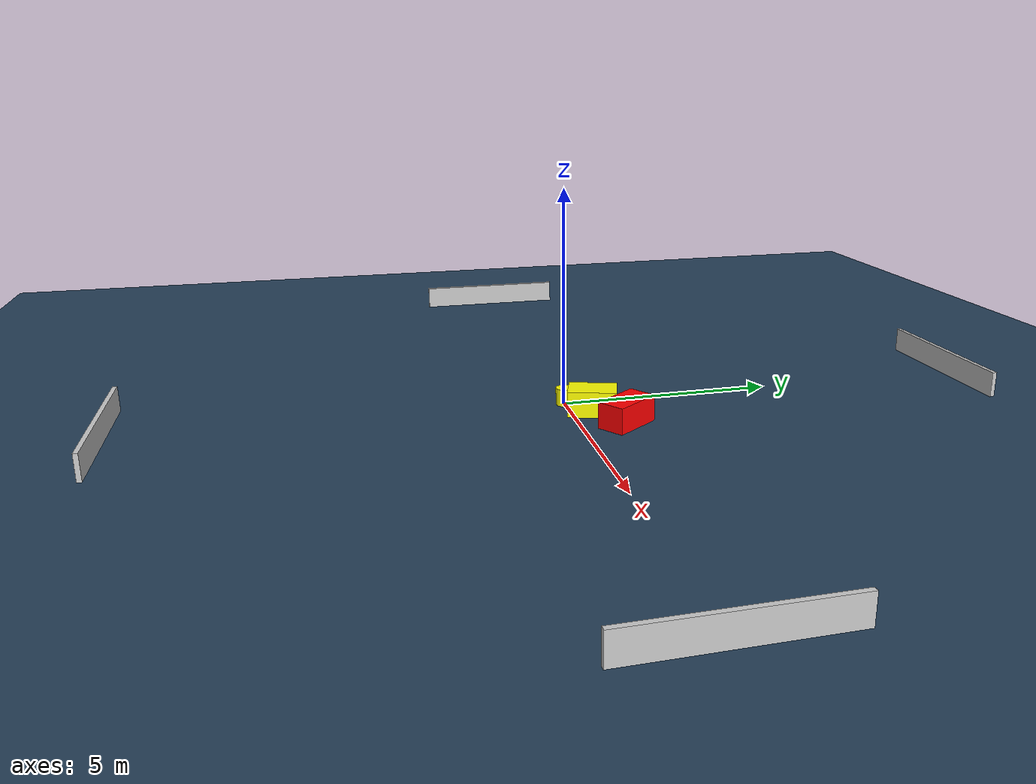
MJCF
<?xml version="1.0" ?>
<mujoco model="generated_environment">
  <option timestep="0.01" integrator="RK4" cone="elliptic"/>
  <default>
    <geom density="1"/>
  </default>
  <asset>
    <texture builtin="gradient" height="3072" name="skybox" rgb1="0.3 0.5 0.7" rgb2="0 0 0" type="skybox" width="512"/>
    <texture builtin="checker" height="300" name="groundplane" rgb1="0.2 0.3 0.4" rgb2="0.1 0.2 0.3" type="2d" width="300"/>
    <material name="groundplane" reflectance="0.2" texrepeat="5 5" texture="groundplane"/>
  </asset>
  <worldbody>
    <light dir="0 0 -1" directional="true" pos="0 0 1.5"/>
    <geom condim="3" friction="0.5 0.005 0.001" material="groundplane" name="floor" pos="0 0 0" size="0 0 0.05" type="plane"/>
    <body name="walls">
      <geom name="wall_1" condim="4" pos="-10.0 0.0 0.3" rgba="0.800000011920929 0.800000011920929 0.800000011920929 1.0" size="0.05 2.0 0.3" type="box"/>
      <geom name="wall_2" condim="4" pos="10.0 0.0 0.3" rgba="0.800000011920929 0.800000011920929 0.800000011920929 1.0" size="0.05 2.0 0.3" type="box"/>
      <geom name="wall_3" condim="4" pos="0.0 -10.0 0.3" rgba="0.800000011920929 0.800000011920929 0.800000011920929 1.0" size="2.0 0.05 0.3" type="box"/>
      <geom name="wall_4" condim="4" pos="0.0 10.0 0.3" rgba="0.800000011920929 0.800000011920929 0.800000011920929 1.0" size="2.0 0.05 0.3" type="box"/>
    </body>
    <body name="robot">
      <joint name="joint_x" type="slide" pos="0 0 0" axis="1 0 0"/>
      <joint name="joint_y" type="slide" pos="0 0 0" axis="0 1 0"/>
      <geom name="robot" type="cylinder" pos="0.0 0.0 0.2" size="0.2 0.2 0.0" mass="5.0" friction="1.0 0.005 0.0001" condim="4" rgba="1.0 1.0 0.0 1.0"/>
    </body>
    <body name="obstacle_1_movable">
      <geom name="obstacle_1_movable" condim="4" pos="0.7200628234485781 0.4763319293605723 0.3" euler="0 0 252.2697518733974" friction="0.0 0.005 0.001" rgba="1.0 1.0 0.0 1.0" size="0.552673224098545 0.3555085116704892 0.3" type="box" mass="0.1"/>
      <joint type="free"/>
    </body>
    <body name="obstacle_2_static">
      <geom name="obstacle_2_static" condim="4" pos="1.6046620318650224 1.0043664582618395 0.3" euler="0 0 35.61142389950802" friction="0.0 0.005 0.001" rgba="1.0 0.0 0.0 1.0" size="0.32998190697436985 0.5916894004143847 0.3" type="box"/>
    </body>
  </worldbody>
  <actuator>
    <motor name="actuator_x" joint="joint_x" gear="1" ctrlrange="-1 1"/>
    <motor name="actuator_y" joint="joint_y" gear="1" ctrlrange="-1 1"/>
  </actuator>
</mujoco>
